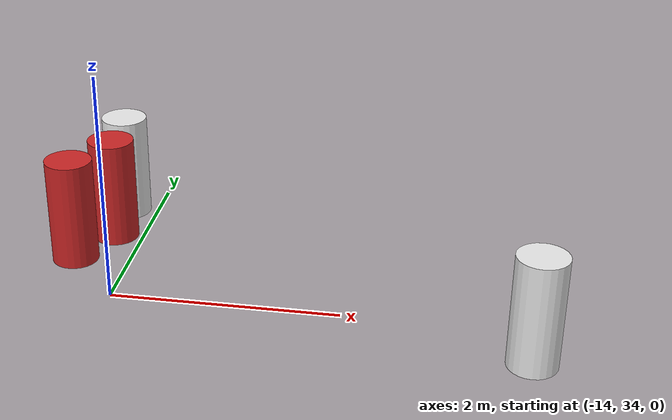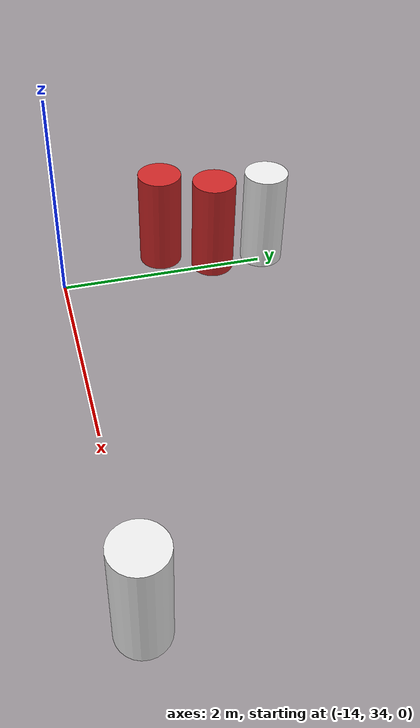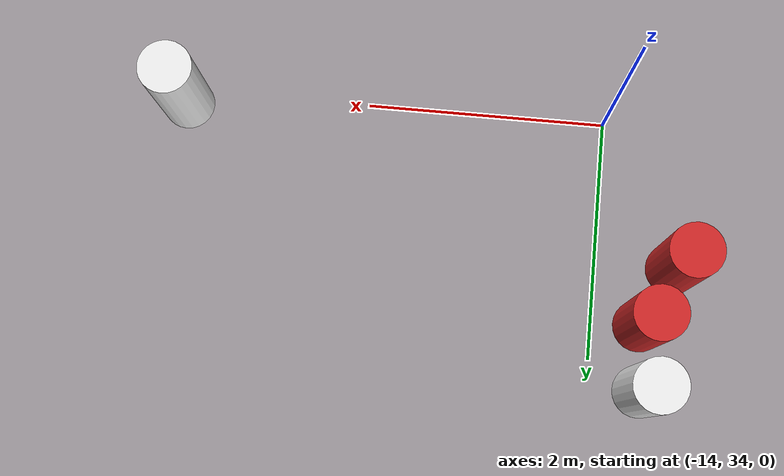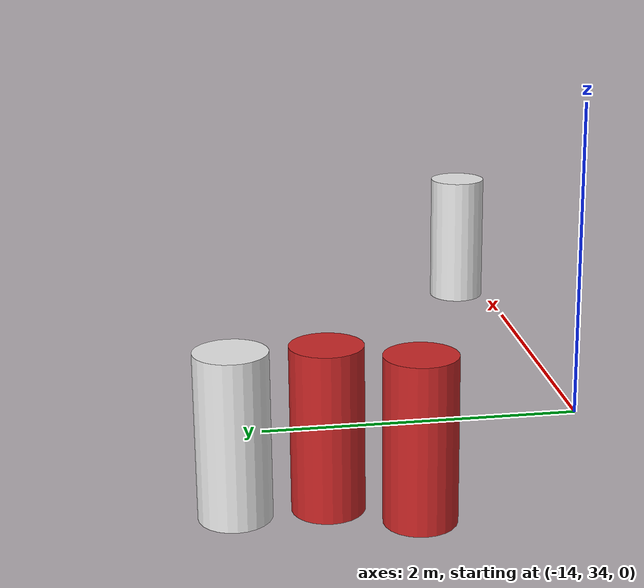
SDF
<sdf version="1.10">
 <world name="IGVC_AutoNav">
  <model name="barrel_22">
   <link name="link">
    <inertial>
     <mass>1</mass>
     <inertia>
      <ixx>0.14583299999999999</ixx>
      <ixy>0</ixy>
      <ixz>0</ixz>
      <iyy>0.14583299999999999</iyy>
      <iyz>0</iyz>
      <izz>0.125</izz>
     </inertia>
    </inertial>
    <visual name="visual">
     <geometry><cylinder><radius>0.222916</radius><length>1.0356700000000001</length></cylinder></geometry>
     <material>
      <script><name>Gazebo/White</name><uri>file://media/materials/scripts/gazebo.material</uri></script>
      <shader type="pixel"/>
     </material>
    </visual>
    <collision name="collision">
     <geometry><cylinder><radius>0.222916</radius><length>1.0356700000000001</length></cylinder></geometry>
     <surface>
      <friction>
       <ode><mu>1</mu><mu2>1</mu2><fdir1>0 0 0</fdir1><slip1>0</slip1><slip2>0</slip2></ode>
       <torsional>
        <coefficient>1</coefficient>
        <patch_radius>0</patch_radius>
        <surface_radius>0</surface_radius>
        <use_patch_radius>true</use_patch_radius>
        <ode><slip>0</slip></ode>
       </torsional>
      </friction>
      <bounce><restitution_coefficient>0</restitution_coefficient><threshold>1000000</threshold></bounce>
      <contact>
       <collide_without_contact>false</collide_without_contact>
       <collide_without_contact_bitmask>1</collide_without_contact_bitmask>
       <collide_bitmask>1</collide_bitmask>
       <ode>
        <soft_cfm>0</soft_cfm>
        <soft_erp>0.20000000000000001</soft_erp>
        <kp>10000000000000</kp>
        <kd>1</kd>
        <max_vel>0.01</max_vel>
        <min_depth>0</min_depth>
       </ode>
       <bullet>
        <split_impulse>true</split_impulse>
        <split_impulse_penetration_threshold>-0.01</split_impulse_penetration_threshold>
        <soft_cfm>0</soft_cfm>
        <soft_erp>0.20000000000000001</soft_erp>
        <kp>10000000000000</kp>
        <kd>1</kd>
       </bullet>
      </contact>
     </surface>
    </collision>
   </link>
   <static>false</static>
   <pose>-14.483590126037598 36.203399658203125 0.19211263195945028 -5.4532423447004407e-18 -7.7421179951692395e-17 1.4523870029707114e-18</pose>
  </model>
  <model name="barrel_24">
   <link name="link">
    <inertial>
     <mass>1</mass>
     <inertia>
      <ixx>0.14583299999999999</ixx>
      <ixy>0</ixy>
      <ixz>0</ixz>
      <iyy>0.14583299999999999</iyy>
      <iyz>0</iyz>
      <izz>0.125</izz>
     </inertia>
    </inertial>
    <visual name="visual">
     <geometry><cylinder><radius>0.222916</radius><length>1.0356700000000001</length></cylinder></geometry>
     <material>
      <script><name>Gazebo/White</name><uri>file://media/materials/scripts/gazebo.material</uri></script>
      <shader type="pixel"/>
     </material>
    </visual>
    <collision name="collision">
     <geometry><cylinder><radius>0.222916</radius><length>1.0356700000000001</length></cylinder></geometry>
     <surface>
      <friction>
       <ode><mu>1</mu><mu2>1</mu2><fdir1>0 0 0</fdir1><slip1>0</slip1><slip2>0</slip2></ode>
       <torsional>
        <coefficient>1</coefficient>
        <patch_radius>0</patch_radius>
        <surface_radius>0</surface_radius>
        <use_patch_radius>true</use_patch_radius>
        <ode><slip>0</slip></ode>
       </torsional>
      </friction>
      <bounce><restitution_coefficient>0</restitution_coefficient><threshold>1000000</threshold></bounce>
      <contact>
       <collide_without_contact>false</collide_without_contact>
       <collide_without_contact_bitmask>1</collide_without_contact_bitmask>
       <collide_bitmask>1</collide_bitmask>
       <ode>
        <soft_cfm>0</soft_cfm>
        <soft_erp>0.20000000000000001</soft_erp>
        <kp>10000000000000</kp>
        <kd>1</kd>
        <max_vel>0.01</max_vel>
        <min_depth>0</min_depth>
       </ode>
       <bullet>
        <split_impulse>true</split_impulse>
        <split_impulse_penetration_threshold>-0.01</split_impulse_penetration_threshold>
        <soft_cfm>0</soft_cfm>
        <soft_erp>0.20000000000000001</soft_erp>
        <kp>10000000000000</kp>
        <kd>1</kd>
       </bullet>
      </contact>
     </surface>
    </collision>
   </link>
   <static>false</static>
   <pose>-10.382210731506348 34.021999359130859 0.19137045289728427 6.041603864123488e-17 -1.5710058991408846e-16 1.0253059965267708e-18</pose>
  </model>
  <model name="barrel_26">
   <link name="link">
    <inertial>
     <mass>1</mass>
     <inertia>
      <ixx>0.14583299999999999</ixx>
      <ixy>0</ixy>
      <ixz>0</ixz>
      <iyy>0.14583299999999999</iyy>
      <iyz>0</iyz>
      <izz>0.125</izz>
     </inertia>
    </inertial>
    <visual name="visual">
     <geometry><cylinder><radius>0.222916</radius><length>1.0356700000000001</length></cylinder></geometry>
     <material>
      <script><name>Gazebo/Red</name><uri>file://media/materials/scripts/gazebo.material</uri></script>
      <shader type="pixel"/>
     </material>
    </visual>
    <collision name="collision">
     <geometry><cylinder><radius>0.222916</radius><length>1.0356700000000001</length></cylinder></geometry>
     <surface>
      <friction>
       <ode><mu>1</mu><mu2>1</mu2><fdir1>0 0 0</fdir1><slip1>0</slip1><slip2>0</slip2></ode>
       <torsional>
        <coefficient>1</coefficient>
        <patch_radius>0</patch_radius>
        <surface_radius>0</surface_radius>
        <use_patch_radius>true</use_patch_radius>
        <ode><slip>0</slip></ode>
       </torsional>
      </friction>
      <bounce><restitution_coefficient>0</restitution_coefficient><threshold>1000000</threshold></bounce>
      <contact>
       <collide_without_contact>false</collide_without_contact>
       <collide_without_contact_bitmask>1</collide_without_contact_bitmask>
       <collide_bitmask>1</collide_bitmask>
       <ode>
        <soft_cfm>0</soft_cfm>
        <soft_erp>0.20000000000000001</soft_erp>
        <kp>10000000000000</kp>
        <kd>1</kd>
        <max_vel>0.01</max_vel>
        <min_depth>0</min_depth>
       </ode>
       <bullet>
        <split_impulse>true</split_impulse>
        <split_impulse_penetration_threshold>-0.01</split_impulse_penetration_threshold>
        <soft_cfm>0</soft_cfm>
        <soft_erp>0.20000000000000001</soft_erp>
        <kp>10000000000000</kp>
        <kd>1</kd>
       </bullet>
      </contact>
     </surface>
    </collision>
   </link>
   <static>false</static>
   <pose>-14.45680046081543 35.6458740234375 0.19110775762623289 -8.3101672669781643e-17 -9.0168287844361359e-17 4.2014307853982748e-18</pose>
  </model>
  <model name="barrel_27">
   <link name="link">
    <inertial>
     <mass>1</mass>
     <inertia>
      <ixx>0.14583299999999999</ixx>
      <ixy>0</ixy>
      <ixz>0</ixz>
      <iyy>0.14583299999999999</iyy>
      <iyz>0</iyz>
      <izz>0.125</izz>
     </inertia>
    </inertial>
    <visual name="visual">
     <geometry><cylinder><radius>0.222916</radius><length>1.0356700000000001</length></cylinder></geometry>
     <material>
      <script><name>Gazebo/Red</name><uri>file://media/materials/scripts/gazebo.material</uri></script>
      <shader type="pixel"/>
     </material>
    </visual>
    <collision name="collision">
     <geometry><cylinder><radius>0.222916</radius><length>1.0356700000000001</length></cylinder></geometry>
     <surface>
      <friction>
       <ode><mu>1</mu><mu2>1</mu2><fdir1>0 0 0</fdir1><slip1>0</slip1><slip2>0</slip2></ode>
       <torsional>
        <coefficient>1</coefficient>
        <patch_radius>0</patch_radius>
        <surface_radius>0</surface_radius>
        <use_patch_radius>true</use_patch_radius>
        <ode><slip>0</slip></ode>
       </torsional>
      </friction>
      <bounce><restitution_coefficient>0</restitution_coefficient><threshold>1000000</threshold></bounce>
      <contact>
       <collide_without_contact>false</collide_without_contact>
       <collide_without_contact_bitmask>1</collide_without_contact_bitmask>
       <collide_bitmask>1</collide_bitmask>
       <ode>
        <soft_cfm>0</soft_cfm>
        <soft_erp>0.20000000000000001</soft_erp>
        <kp>10000000000000</kp>
        <kd>1</kd>
        <max_vel>0.01</max_vel>
        <min_depth>0</min_depth>
       </ode>
       <bullet>
        <split_impulse>true</split_impulse>
        <split_impulse_penetration_threshold>-0.01</split_impulse_penetration_threshold>
        <soft_cfm>0</soft_cfm>
        <soft_erp>0.20000000000000001</soft_erp>
        <kp>10000000000000</kp>
        <kd>1</kd>
       </bullet>
      </contact>
     </surface>
    </collision>
   </link>
   <static>false</static>
   <pose>-14.709400177001953 35.132270812988281 0.19181582028875888 -2.170419257292846e-16 7.23759140741215e-17 1.928168654648663e-18</pose>
  </model>
 </world>
</sdf>
